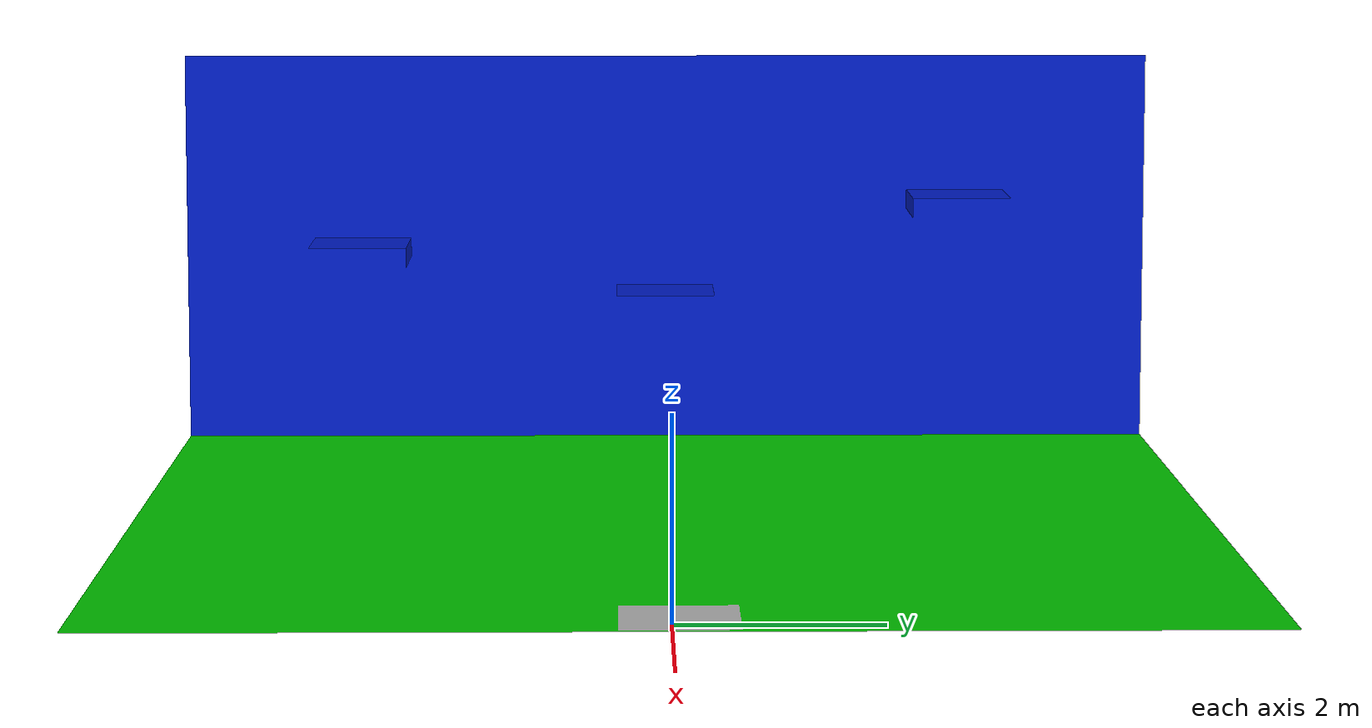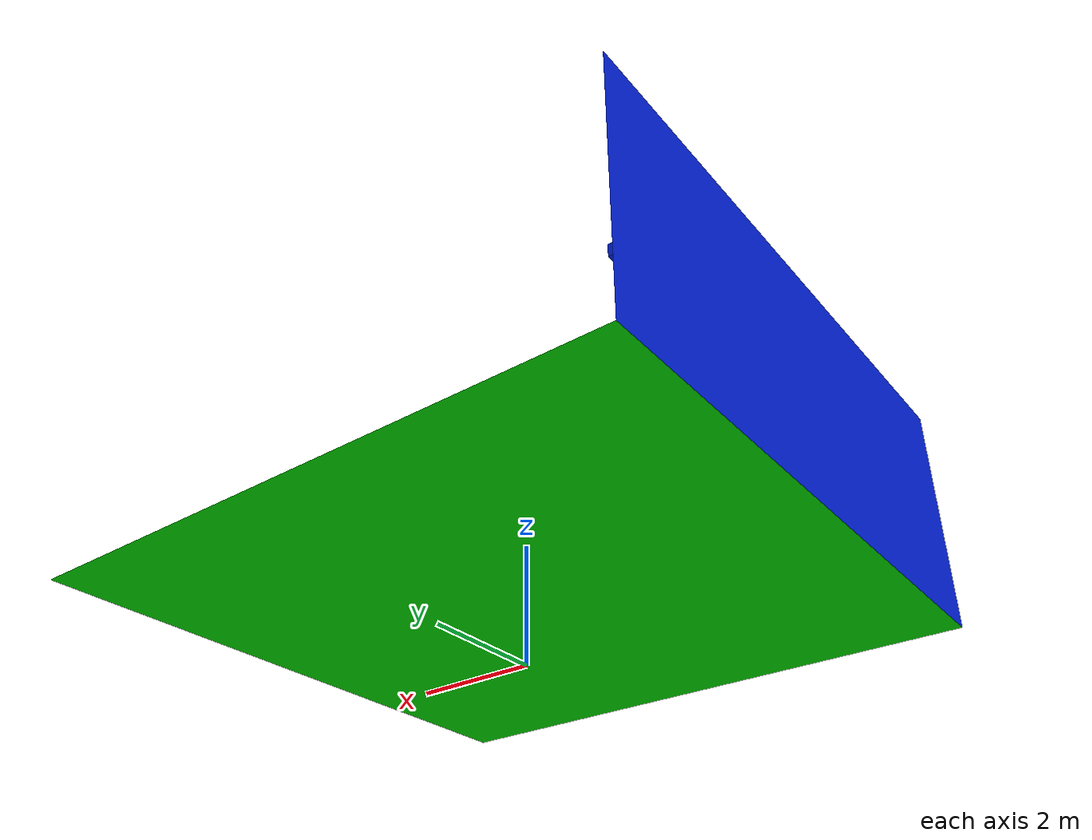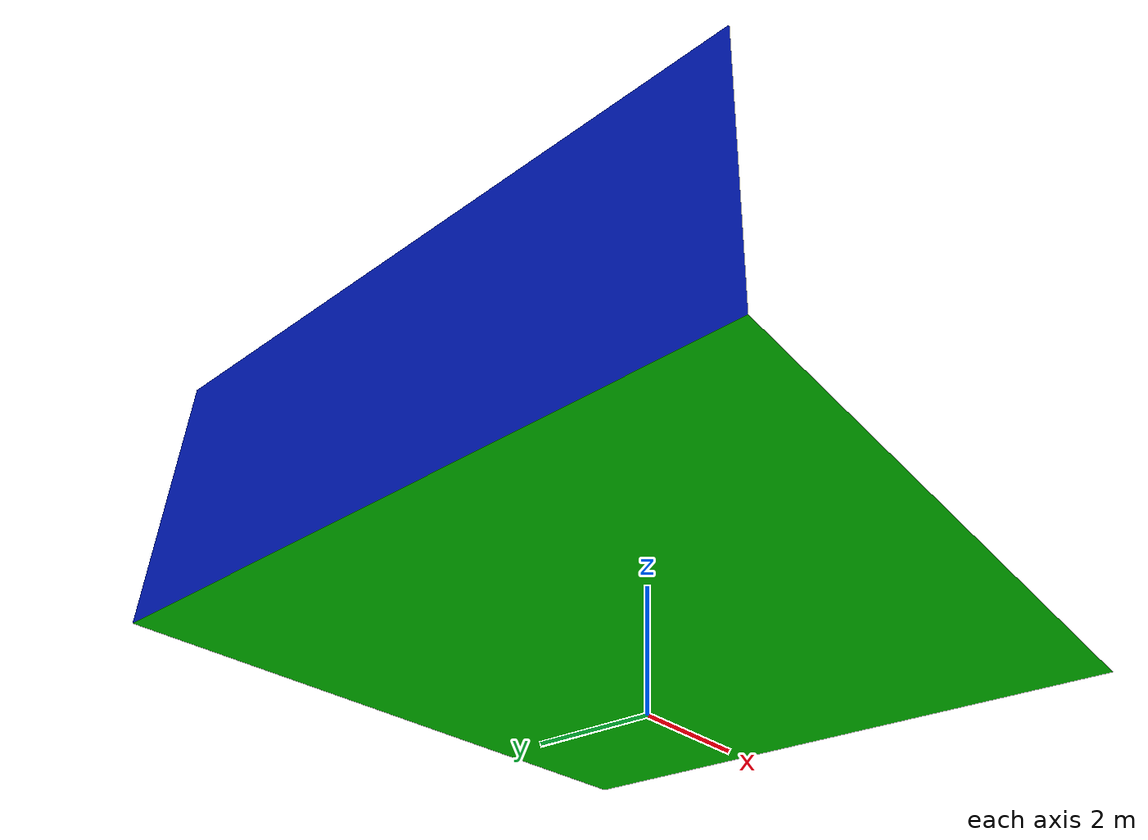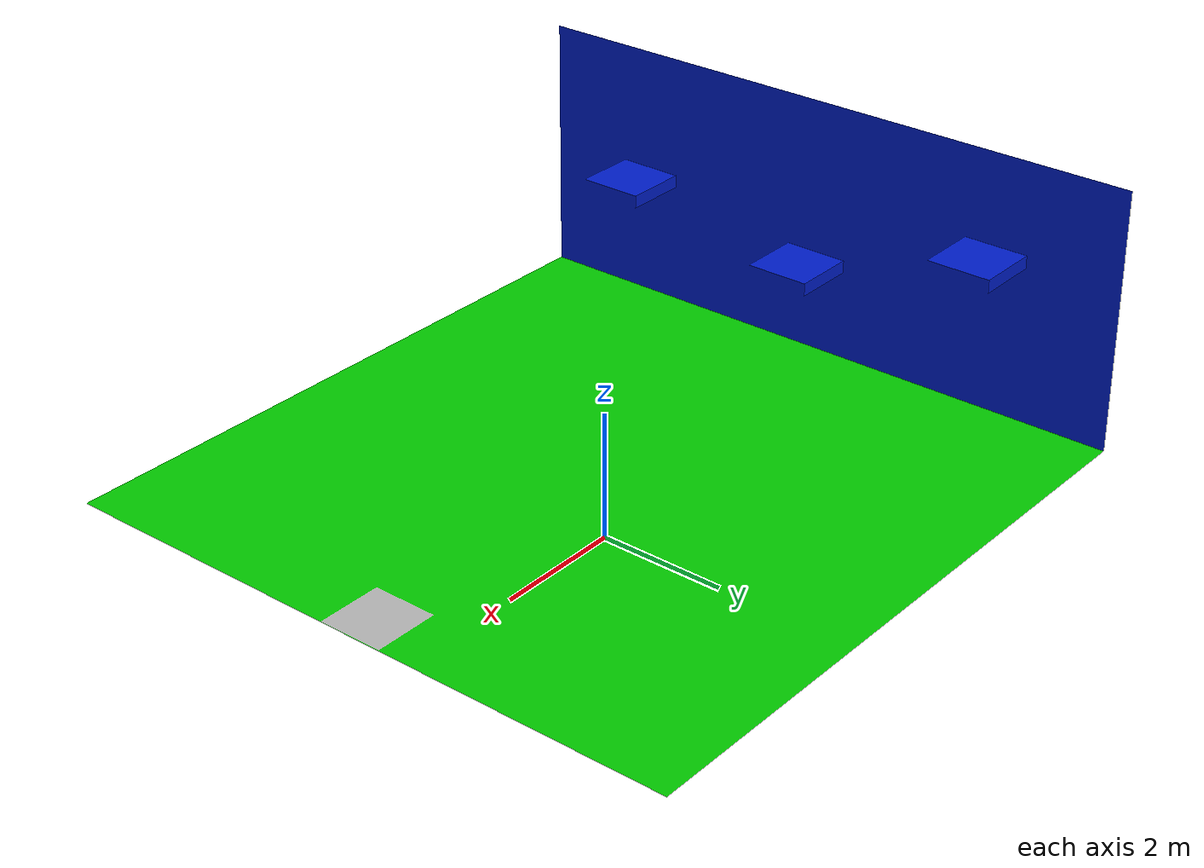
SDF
<?xml version="1.0" ?>
<sdf version="1.6">
  <model name="Arena KRTI 2020 Landing Pad">
    <pose>0 0 1 0 0 0</pose>
    <static>true</static>
    <link name="link">
      <collision name="collision">
        <geometry>
          <mesh>
            <uri>model://Arena_KRTI_Landing_Pad/meshes/mesh.dae</uri>
          </mesh>
        </geometry>
      </collision>

      <visual name="visual">
        <geometry>
          <mesh>
            <uri>model://Arena_KRTI_Landing_Pad/meshes/mesh.dae</uri>
          </mesh>
        </geometry>
      </visual>
    </link>
  </model>
</sdf>
